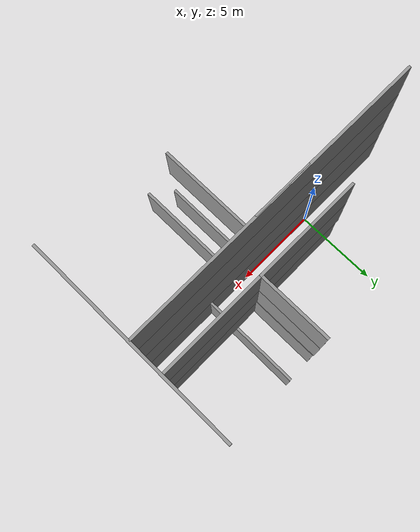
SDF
<sdf version="1.7">
 <world name="__default__">
  <model name="level4_floor">
   <link name="Wall_12">
    <pose>3.88883 -0.004681 0 0 -0 0</pose>
    <visual name="Wall_12_Visual">
     <pose>0 0 1.25 0 -0 0</pose>
     <geometry><box><size>18 0.15 2.5</size></box></geometry>
     <material>
      <script><uri>file://media/materials/scripts/gazebo.material</uri><name>Gazebo/Grey</name></script>
      <ambient>1 1 1 1</ambient>
      <shader type="pixel"/>
     </material>
     <meta><layer>0</layer></meta>
    </visual>
    <collision name="Wall_12_Collision">
     <pose>0 0 1.25 0 -0 0</pose>
     <geometry><box><size>18 0.15 2.5</size></box></geometry>
     <surface>
      <friction>
       <ode><mu>1</mu><mu2>1</mu2><fdir1>0 0 0</fdir1><slip1>0</slip1><slip2>0</slip2></ode>
       <torsional>
        <coefficient>1</coefficient>
        <patch_radius>0</patch_radius>
        <surface_radius>0</surface_radius>
        <use_patch_radius>1</use_patch_radius>
        <ode><slip>0</slip></ode>
       </torsional>
      </friction>
      <bounce><restitution_coefficient>0</restitution_coefficient><threshold>1e+06</threshold></bounce>
      <contact>
       <collide_without_contact>0</collide_without_contact>
       <collide_without_contact_bitmask>1</collide_without_contact_bitmask>
       <collide_bitmask>1</collide_bitmask>
       <ode>
        <soft_cfm>0</soft_cfm>
        <soft_erp>0.2</soft_erp>
        <kp>1e+13</kp>
        <kd>1</kd>
        <max_vel>0.01</max_vel>
        <min_depth>0</min_depth>
       </ode>
       <bullet>
        <split_impulse>1</split_impulse>
        <split_impulse_penetration_threshold>-0.01</split_impulse_penetration_threshold>
        <soft_cfm>0</soft_cfm>
        <soft_erp>0.2</soft_erp>
        <kp>1e+13</kp>
        <kd>1</kd>
       </bullet>
      </contact>
     </surface>
    </collision>
   </link>
   <link name="Wall_20">
    <pose>5.23395 -2.97304 0 0 0 -1.5708</pose>
    <visual name="Wall_20_Visual">
     <pose>0 0 1.25 0 -0 0</pose>
     <geometry><box><size>6 0.15 2.5</size></box></geometry>
     <material>
      <script><uri>file://media/materials/scripts/gazebo.material</uri><name>Gazebo/Grey</name></script>
      <ambient>1 1 1 1</ambient>
      <shader type="pixel"/>
     </material>
     <meta><layer>0</layer></meta>
    </visual>
    <collision name="Wall_20_Collision">
     <pose>0 0 1.25 0 -0 0</pose>
     <geometry><box><size>6 0.15 2.5</size></box></geometry>
     <surface>
      <friction>
       <ode><mu>1</mu><mu2>1</mu2><fdir1>0 0 0</fdir1><slip1>0</slip1><slip2>0</slip2></ode>
       <torsional>
        <coefficient>1</coefficient>
        <patch_radius>0</patch_radius>
        <surface_radius>0</surface_radius>
        <use_patch_radius>1</use_patch_radius>
        <ode><slip>0</slip></ode>
       </torsional>
      </friction>
      <bounce><restitution_coefficient>0</restitution_coefficient><threshold>1e+06</threshold></bounce>
      <contact>
       <collide_without_contact>0</collide_without_contact>
       <collide_without_contact_bitmask>1</collide_without_contact_bitmask>
       <collide_bitmask>1</collide_bitmask>
       <ode>
        <soft_cfm>0</soft_cfm>
        <soft_erp>0.2</soft_erp>
        <kp>1e+13</kp>
        <kd>1</kd>
        <max_vel>0.01</max_vel>
        <min_depth>0</min_depth>
       </ode>
       <bullet>
        <split_impulse>1</split_impulse>
        <split_impulse_penetration_threshold>-0.01</split_impulse_penetration_threshold>
        <soft_cfm>0</soft_cfm>
        <soft_erp>0.2</soft_erp>
        <kp>1e+13</kp>
        <kd>1</kd>
       </bullet>
      </contact>
     </surface>
    </collision>
   </link>
   <link name="Wall_24">
    <pose>8.37715 2.92436 0 0 -0 1.5708</pose>
    <visual name="Wall_24_Visual">
     <pose>0 0 1.25 0 -0 0</pose>
     <geometry><box><size>6 0.15 2.5</size></box></geometry>
     <material>
      <script><uri>file://media/materials/scripts/gazebo.material</uri><name>Gazebo/Grey</name></script>
      <ambient>1 1 1 1</ambient>
      <shader type="pixel"/>
     </material>
     <meta><layer>0</layer></meta>
    </visual>
    <collision name="Wall_24_Collision">
     <pose>0 0 1.25 0 -0 0</pose>
     <geometry><box><size>6 0.15 2.5</size></box></geometry>
     <surface>
      <friction>
       <ode><mu>1</mu><mu2>1</mu2><fdir1>0 0 0</fdir1><slip1>0</slip1><slip2>0</slip2></ode>
       <torsional>
        <coefficient>1</coefficient>
        <patch_radius>0</patch_radius>
        <surface_radius>0</surface_radius>
        <use_patch_radius>1</use_patch_radius>
        <ode><slip>0</slip></ode>
       </torsional>
      </friction>
      <bounce><restitution_coefficient>0</restitution_coefficient><threshold>1e+06</threshold></bounce>
      <contact>
       <collide_without_contact>0</collide_without_contact>
       <collide_without_contact_bitmask>1</collide_without_contact_bitmask>
       <collide_bitmask>1</collide_bitmask>
       <ode>
        <soft_cfm>0</soft_cfm>
        <soft_erp>0.2</soft_erp>
        <kp>1e+13</kp>
        <kd>1</kd>
        <max_vel>0.01</max_vel>
        <min_depth>0</min_depth>
       </ode>
       <bullet>
        <split_impulse>1</split_impulse>
        <split_impulse_penetration_threshold>-0.01</split_impulse_penetration_threshold>
        <soft_cfm>0</soft_cfm>
        <soft_erp>0.2</soft_erp>
        <kp>1e+13</kp>
        <kd>1</kd>
       </bullet>
      </contact>
     </surface>
    </collision>
   </link>
   <link name="Wall_32">
    <pose>12.925 0 2.5 0 0 -1.5708</pose>
    <visual name="Wall_32_Visual">
     <pose>0 0 1.25 0 -0 0</pose>
     <geometry><box><size>12 0.15 2.5</size></box></geometry>
     <material>
      <script><uri>file://media/materials/scripts/gazebo.material</uri><name>Gazebo/Grey</name></script>
      <ambient>1 1 1 1</ambient>
      <shader type="pixel"/>
     </material>
     <meta><layer>1</layer></meta>
    </visual>
    <collision name="Wall_32_Collision">
     <pose>0 0 1.25 0 -0 0</pose>
     <geometry><box><size>12 0.15 2.5</size></box></geometry>
     <surface>
      <friction>
       <ode><mu>1</mu><mu2>1</mu2><fdir1>0 0 0</fdir1><slip1>0</slip1><slip2>0</slip2></ode>
       <torsional>
        <coefficient>1</coefficient>
        <patch_radius>0</patch_radius>
        <surface_radius>0</surface_radius>
        <use_patch_radius>1</use_patch_radius>
        <ode><slip>0</slip></ode>
       </torsional>
      </friction>
      <bounce><restitution_coefficient>0</restitution_coefficient><threshold>1e+06</threshold></bounce>
      <contact>
       <collide_without_contact>0</collide_without_contact>
       <collide_without_contact_bitmask>1</collide_without_contact_bitmask>
       <collide_bitmask>1</collide_bitmask>
       <ode>
        <soft_cfm>0</soft_cfm>
        <soft_erp>0.2</soft_erp>
        <kp>1e+13</kp>
        <kd>1</kd>
        <max_vel>0.01</max_vel>
        <min_depth>0</min_depth>
       </ode>
       <bullet>
        <split_impulse>1</split_impulse>
        <split_impulse_penetration_threshold>-0.01</split_impulse_penetration_threshold>
        <soft_cfm>0</soft_cfm>
        <soft_erp>0.2</soft_erp>
        <kp>1e+13</kp>
        <kd>1</kd>
       </bullet>
      </contact>
     </surface>
    </collision>
   </link>
   <link name="Wall_33">
    <pose>3.88883 -0.004681 2.5 0 -0 0</pose>
    <visual name="Wall_33_Visual">
     <pose>0 0 1.25 0 -0 0</pose>
     <geometry><box><size>18 0.15 2.5</size></box></geometry>
     <material>
      <script><uri>file://media/materials/scripts/gazebo.material</uri><name>Gazebo/Grey</name></script>
      <ambient>1 1 1 1</ambient>
      <shader type="pixel"/>
     </material>
     <meta><layer>1</layer></meta>
    </visual>
    <collision name="Wall_33_Collision">
     <pose>0 0 1.25 0 -0 0</pose>
     <geometry><box><size>18 0.15 2.5</size></box></geometry>
     <surface>
      <friction>
       <ode><mu>1</mu><mu2>1</mu2><fdir1>0 0 0</fdir1><slip1>0</slip1><slip2>0</slip2></ode>
       <torsional>
        <coefficient>1</coefficient>
        <patch_radius>0</patch_radius>
        <surface_radius>0</surface_radius>
        <use_patch_radius>1</use_patch_radius>
        <ode><slip>0</slip></ode>
       </torsional>
      </friction>
      <bounce><restitution_coefficient>0</restitution_coefficient><threshold>1e+06</threshold></bounce>
      <contact>
       <collide_without_contact>0</collide_without_contact>
       <collide_without_contact_bitmask>1</collide_without_contact_bitmask>
       <collide_bitmask>1</collide_bitmask>
       <ode>
        <soft_cfm>0</soft_cfm>
        <soft_erp>0.2</soft_erp>
        <kp>1e+13</kp>
        <kd>1</kd>
        <max_vel>0.01</max_vel>
        <min_depth>0</min_depth>
       </ode>
       <bullet>
        <split_impulse>1</split_impulse>
        <split_impulse_penetration_threshold>-0.01</split_impulse_penetration_threshold>
        <soft_cfm>0</soft_cfm>
        <soft_erp>0.2</soft_erp>
        <kp>1e+13</kp>
        <kd>1</kd>
       </bullet>
      </contact>
     </surface>
    </collision>
   </link>
   <link name="Wall_37">
    <pose>6.86229 -2.97304 2.5 0 0 -1.5708</pose>
    <visual name="Wall_37_Visual">
     <pose>0 0 1.25 0 -0 0</pose>
     <geometry><box><size>6 0.15 2.5</size></box></geometry>
     <material>
      <script><uri>file://media/materials/scripts/gazebo.material</uri><name>Gazebo/Grey</name></script>
      <ambient>1 1 1 1</ambient>
      <shader type="pixel"/>
     </material>
     <meta><layer>1</layer></meta>
    </visual>
    <collision name="Wall_37_Collision">
     <pose>0 0 1.25 0 -0 0</pose>
     <geometry><box><size>6 0.15 2.5</size></box></geometry>
     <surface>
      <friction>
       <ode><mu>1</mu><mu2>1</mu2><fdir1>0 0 0</fdir1><slip1>0</slip1><slip2>0</slip2></ode>
       <torsional>
        <coefficient>1</coefficient>
        <patch_radius>0</patch_radius>
        <surface_radius>0</surface_radius>
        <use_patch_radius>1</use_patch_radius>
        <ode><slip>0</slip></ode>
       </torsional>
      </friction>
      <bounce><restitution_coefficient>0</restitution_coefficient><threshold>1e+06</threshold></bounce>
      <contact>
       <collide_without_contact>0</collide_without_contact>
       <collide_without_contact_bitmask>1</collide_without_contact_bitmask>
       <collide_bitmask>1</collide_bitmask>
       <ode>
        <soft_cfm>0</soft_cfm>
        <soft_erp>0.2</soft_erp>
        <kp>1e+13</kp>
        <kd>1</kd>
        <max_vel>0.01</max_vel>
        <min_depth>0</min_depth>
       </ode>
       <bullet>
        <split_impulse>1</split_impulse>
        <split_impulse_penetration_threshold>-0.01</split_impulse_penetration_threshold>
        <soft_cfm>0</soft_cfm>
        <soft_erp>0.2</soft_erp>
        <kp>1e+13</kp>
        <kd>1</kd>
       </bullet>
      </contact>
     </surface>
    </collision>
   </link>
   <link name="Wall_38">
    <pose>4.23965 -0.007809 2.5 0 -0 0</pose>
    <visual name="Wall_38_Visual">
     <pose>0 0 1.25 0 -0 0</pose>
     <geometry><box><size>5 0.15 2.5</size></box></geometry>
     <material>
      <script><uri>file://media/materials/scripts/gazebo.material</uri><name>Gazebo/Grey</name></script>
      <ambient>1 1 1 1</ambient>
      <shader type="pixel"/>
     </material>
     <meta><layer>1</layer></meta>
    </visual>
    <collision name="Wall_38_Collision">
     <pose>0 0 1.25 0 -0 0</pose>
     <geometry><box><size>5 0.15 2.5</size></box></geometry>
     <surface>
      <friction>
       <ode><mu>1</mu><mu2>1</mu2><fdir1>0 0 0</fdir1><slip1>0</slip1><slip2>0</slip2></ode>
       <torsional>
        <coefficient>1</coefficient>
        <patch_radius>0</patch_radius>
        <surface_radius>0</surface_radius>
        <use_patch_radius>1</use_patch_radius>
        <ode><slip>0</slip></ode>
       </torsional>
      </friction>
      <bounce><restitution_coefficient>0</restitution_coefficient><threshold>1e+06</threshold></bounce>
      <contact>
       <collide_without_contact>0</collide_without_contact>
       <collide_without_contact_bitmask>1</collide_without_contact_bitmask>
       <collide_bitmask>1</collide_bitmask>
       <ode>
        <soft_cfm>0</soft_cfm>
        <soft_erp>0.2</soft_erp>
        <kp>1e+13</kp>
        <kd>1</kd>
        <max_vel>0.01</max_vel>
        <min_depth>0</min_depth>
       </ode>
       <bullet>
        <split_impulse>1</split_impulse>
        <split_impulse_penetration_threshold>-0.01</split_impulse_penetration_threshold>
        <soft_cfm>0</soft_cfm>
        <soft_erp>0.2</soft_erp>
        <kp>1e+13</kp>
        <kd>1</kd>
       </bullet>
      </contact>
     </surface>
    </collision>
   </link>
   <link name="Wall_39">
    <pose>7.01245 3.8781 2.5 0 -0 1.5708</pose>
    <visual name="Wall_39_Visual">
     <pose>0 0 1.25 0 -0 0</pose>
     <geometry><box><size>4 0.15 2.5</size></box></geometry>
     <material>
      <script><uri>file://media/materials/scripts/gazebo.material</uri><name>Gazebo/Grey</name></script>
      <ambient>1 1 1 1</ambient>
      <shader type="pixel"/>
     </material>
     <meta><layer>1</layer></meta>
    </visual>
    <collision name="Wall_39_Collision">
     <pose>0 0 1.25 0 -0 0</pose>
     <geometry><box><size>4 0.15 2.5</size></box></geometry>
     <surface>
      <friction>
       <ode><mu>1</mu><mu2>1</mu2><fdir1>0 0 0</fdir1><slip1>0</slip1><slip2>0</slip2></ode>
       <torsional>
        <coefficient>1</coefficient>
        <patch_radius>0</patch_radius>
        <surface_radius>0</surface_radius>
        <use_patch_radius>1</use_patch_radius>
        <ode><slip>0</slip></ode>
       </torsional>
      </friction>
      <bounce><restitution_coefficient>0</restitution_coefficient><threshold>1e+06</threshold></bounce>
      <contact>
       <collide_without_contact>0</collide_without_contact>
       <collide_without_contact_bitmask>1</collide_without_contact_bitmask>
       <collide_bitmask>1</collide_bitmask>
       <ode>
        <soft_cfm>0</soft_cfm>
        <soft_erp>0.2</soft_erp>
        <kp>1e+13</kp>
        <kd>1</kd>
        <max_vel>0.01</max_vel>
        <min_depth>0</min_depth>
       </ode>
       <bullet>
        <split_impulse>1</split_impulse>
        <split_impulse_penetration_threshold>-0.01</split_impulse_penetration_threshold>
        <soft_cfm>0</soft_cfm>
        <soft_erp>0.2</soft_erp>
        <kp>1e+13</kp>
        <kd>1</kd>
       </bullet>
      </contact>
     </surface>
    </collision>
   </link>
   <link name="Wall_45">
    <pose>12.925 0 5 0 0 -1.5708</pose>
    <visual name="Wall_45_Visual">
     <pose>0 0 1.25 0 -0 0</pose>
     <geometry><box><size>12 0.15 2.5</size></box></geometry>
     <material>
      <script><uri>file://media/materials/scripts/gazebo.material</uri><name>Gazebo/Grey</name></script>
      <ambient>1 1 1 1</ambient>
      <shader type="pixel"/>
     </material>
     <meta><layer>2</layer></meta>
    </visual>
    <collision name="Wall_45_Collision">
     <pose>0 0 1.25 0 -0 0</pose>
     <geometry><box><size>12 0.15 2.5</size></box></geometry>
     <surface>
      <friction>
       <ode><mu>1</mu><mu2>1</mu2><fdir1>0 0 0</fdir1><slip1>0</slip1><slip2>0</slip2></ode>
       <torsional>
        <coefficient>1</coefficient>
        <patch_radius>0</patch_radius>
        <surface_radius>0</surface_radius>
        <use_patch_radius>1</use_patch_radius>
        <ode><slip>0</slip></ode>
       </torsional>
      </friction>
      <bounce><restitution_coefficient>0</restitution_coefficient><threshold>1e+06</threshold></bounce>
      <contact>
       <collide_without_contact>0</collide_without_contact>
       <collide_without_contact_bitmask>1</collide_without_contact_bitmask>
       <collide_bitmask>1</collide_bitmask>
       <ode>
        <soft_cfm>0</soft_cfm>
        <soft_erp>0.2</soft_erp>
        <kp>1e+13</kp>
        <kd>1</kd>
        <max_vel>0.01</max_vel>
        <min_depth>0</min_depth>
       </ode>
       <bullet>
        <split_impulse>1</split_impulse>
        <split_impulse_penetration_threshold>-0.01</split_impulse_penetration_threshold>
        <soft_cfm>0</soft_cfm>
        <soft_erp>0.2</soft_erp>
        <kp>1e+13</kp>
        <kd>1</kd>
       </bullet>
      </contact>
     </surface>
    </collision>
   </link>
   <link name="Wall_46">
    <pose>3.88883 -0.004681 5 0 -0 0</pose>
    <visual name="Wall_46_Visual">
     <pose>0 0 1.25 0 -0 0</pose>
     <geometry><box><size>18 0.15 2.5</size></box></geometry>
     <material>
      <script><uri>file://media/materials/scripts/gazebo.material</uri><name>Gazebo/Grey</name></script>
      <ambient>1 1 1 1</ambient>
      <shader type="pixel"/>
     </material>
     <meta><layer>2</layer></meta>
    </visual>
    <collision name="Wall_46_Collision">
     <pose>0 0 1.25 0 -0 0</pose>
     <geometry><box><size>18 0.15 2.5</size></box></geometry>
     <surface>
      <friction>
       <ode><mu>1</mu><mu2>1</mu2><fdir1>0 0 0</fdir1><slip1>0</slip1><slip2>0</slip2></ode>
       <torsional>
        <coefficient>1</coefficient>
        <patch_radius>0</patch_radius>
        <surface_radius>0</surface_radius>
        <use_patch_radius>1</use_patch_radius>
        <ode><slip>0</slip></ode>
       </torsional>
      </friction>
      <bounce><restitution_coefficient>0</restitution_coefficient><threshold>1e+06</threshold></bounce>
      <contact>
       <collide_without_contact>0</collide_without_contact>
       <collide_without_contact_bitmask>1</collide_without_contact_bitmask>
       <collide_bitmask>1</collide_bitmask>
       <ode>
        <soft_cfm>0</soft_cfm>
        <soft_erp>0.2</soft_erp>
        <kp>1e+13</kp>
        <kd>1</kd>
        <max_vel>0.01</max_vel>
        <min_depth>0</min_depth>
       </ode>
       <bullet>
        <split_impulse>1</split_impulse>
        <split_impulse_penetration_threshold>-0.01</split_impulse_penetration_threshold>
        <soft_cfm>0</soft_cfm>
        <soft_erp>0.2</soft_erp>
        <kp>1e+13</kp>
        <kd>1</kd>
       </bullet>
      </contact>
     </surface>
    </collision>
   </link>
   <link name="Wall_50">
    <pose>5.23395 -2.97304 5 0 0 -1.5708</pose>
    <visual name="Wall_50_Visual">
     <pose>0 0 1.25 0 -0 0</pose>
     <geometry><box><size>6 0.15 2.5</size></box></geometry>
     <material>
      <script><uri>file://media/materials/scripts/gazebo.material</uri><name>Gazebo/Grey</name></script>
      <ambient>1 1 1 1</ambient>
      <shader type="pixel"/>
     </material>
     <meta><layer>2</layer></meta>
    </visual>
    <collision name="Wall_50_Collision">
     <pose>0 0 1.25 0 -0 0</pose>
     <geometry><box><size>6 0.15 2.5</size></box></geometry>
     <surface>
      <friction>
       <ode><mu>1</mu><mu2>1</mu2><fdir1>0 0 0</fdir1><slip1>0</slip1><slip2>0</slip2></ode>
       <torsional>
        <coefficient>1</coefficient>
        <patch_radius>0</patch_radius>
        <surface_radius>0</surface_radius>
        <use_patch_radius>1</use_patch_radius>
        <ode><slip>0</slip></ode>
       </torsional>
      </friction>
      <bounce><restitution_coefficient>0</restitution_coefficient><threshold>1e+06</threshold></bounce>
      <contact>
       <collide_without_contact>0</collide_without_contact>
       <collide_without_contact_bitmask>1</collide_without_contact_bitmask>
       <collide_bitmask>1</collide_bitmask>
       <ode>
        <soft_cfm>0</soft_cfm>
        <soft_erp>0.2</soft_erp>
        <kp>1e+13</kp>
        <kd>1</kd>
        <max_vel>0.01</max_vel>
        <min_depth>0</min_depth>
       </ode>
       <bullet>
        <split_impulse>1</split_impulse>
        <split_impulse_penetration_threshold>-0.01</split_impulse_penetration_threshold>
        <soft_cfm>0</soft_cfm>
        <soft_erp>0.2</soft_erp>
        <kp>1e+13</kp>
        <kd>1</kd>
       </bullet>
      </contact>
     </surface>
    </collision>
   </link>
   <link name="Wall_51">
    <pose>3.48965 -0.007809 5 0 -0 0</pose>
    <visual name="Wall_51_Visual">
     <pose>0 0 1.25 0 -0 0</pose>
     <geometry><box><size>3.5 0.15 2.5</size></box></geometry>
     <material>
      <script><uri>file://media/materials/scripts/gazebo.material</uri><name>Gazebo/Grey</name></script>
      <ambient>1 1 1 1</ambient>
      <shader type="pixel"/>
     </material>
     <meta><layer>2</layer></meta>
    </visual>
    <collision name="Wall_51_Collision">
     <pose>0 0 1.25 0 -0 0</pose>
     <geometry><box><size>3.5 0.15 2.5</size></box></geometry>
     <surface>
      <friction>
       <ode><mu>1</mu><mu2>1</mu2><fdir1>0 0 0</fdir1><slip1>0</slip1><slip2>0</slip2></ode>
       <torsional>
        <coefficient>1</coefficient>
        <patch_radius>0</patch_radius>
        <surface_radius>0</surface_radius>
        <use_patch_radius>1</use_patch_radius>
        <ode><slip>0</slip></ode>
       </torsional>
      </friction>
      <bounce><restitution_coefficient>0</restitution_coefficient><threshold>1e+06</threshold></bounce>
      <contact>
       <collide_without_contact>0</collide_without_contact>
       <collide_without_contact_bitmask>1</collide_without_contact_bitmask>
       <collide_bitmask>1</collide_bitmask>
       <ode>
        <soft_cfm>0</soft_cfm>
        <soft_erp>0.2</soft_erp>
        <kp>1e+13</kp>
        <kd>1</kd>
        <max_vel>0.01</max_vel>
        <min_depth>0</min_depth>
       </ode>
       <bullet>
        <split_impulse>1</split_impulse>
        <split_impulse_penetration_threshold>-0.01</split_impulse_penetration_threshold>
        <soft_cfm>0</soft_cfm>
        <soft_erp>0.2</soft_erp>
        <kp>1e+13</kp>
        <kd>1</kd>
       </bullet>
      </contact>
     </surface>
    </collision>
   </link>
   <link name="Wall_52">
    <pose>6.99281 3.92436 5 0 -0 1.5708</pose>
    <visual name="Wall_52_Visual">
     <pose>0 0 1.25 0 -0 0</pose>
     <geometry><box><size>4 0.15 2.5</size></box></geometry>
     <material>
      <script><uri>file://media/materials/scripts/gazebo.material</uri><name>Gazebo/Grey</name></script>
      <ambient>1 1 1 1</ambient>
      <shader type="pixel"/>
     </material>
     <meta><layer>2</layer></meta>
    </visual>
    <collision name="Wall_52_Collision">
     <pose>0 0 1.25 0 -0 0</pose>
     <geometry><box><size>4 0.15 2.5</size></box></geometry>
     <surface>
      <friction>
       <ode><mu>1</mu><mu2>1</mu2><fdir1>0 0 0</fdir1><slip1>0</slip1><slip2>0</slip2></ode>
       <torsional>
        <coefficient>1</coefficient>
        <patch_radius>0</patch_radius>
        <surface_radius>0</surface_radius>
        <use_patch_radius>1</use_patch_radius>
        <ode><slip>0</slip></ode>
       </torsional>
      </friction>
      <bounce><restitution_coefficient>0</restitution_coefficient><threshold>1e+06</threshold></bounce>
      <contact>
       <collide_without_contact>0</collide_without_contact>
       <collide_without_contact_bitmask>1</collide_without_contact_bitmask>
       <collide_bitmask>1</collide_bitmask>
       <ode>
        <soft_cfm>0</soft_cfm>
        <soft_erp>0.2</soft_erp>
        <kp>1e+13</kp>
        <kd>1</kd>
        <max_vel>0.01</max_vel>
        <min_depth>0</min_depth>
       </ode>
       <bullet>
        <split_impulse>1</split_impulse>
        <split_impulse_penetration_threshold>-0.01</split_impulse_penetration_threshold>
        <soft_cfm>0</soft_cfm>
        <soft_erp>0.2</soft_erp>
        <kp>1e+13</kp>
        <kd>1</kd>
       </bullet>
      </contact>
     </surface>
    </collision>
   </link>
   <link name="Wall_55">
    <pose>9.91781 1.99936 5 0 -0 0</pose>
    <visual name="Wall_55_Visual">
     <pose>0 0 1.25 0 -0 0</pose>
     <geometry><box><size>6 0.15 2.5</size></box></geometry>
     <material>
      <script><uri>file://media/materials/scripts/gazebo.material</uri><name>Gazebo/Grey</name></script>
      <ambient>1 1 1 1</ambient>
      <shader type="pixel"/>
     </material>
     <meta><layer>2</layer></meta>
    </visual>
    <collision name="Wall_55_Collision">
     <pose>0 0 1.25 0 -0 0</pose>
     <geometry><box><size>6 0.15 2.5</size></box></geometry>
     <surface>
      <friction>
       <ode><mu>1</mu><mu2>1</mu2><fdir1>0 0 0</fdir1><slip1>0</slip1><slip2>0</slip2></ode>
       <torsional>
        <coefficient>1</coefficient>
        <patch_radius>0</patch_radius>
        <surface_radius>0</surface_radius>
        <use_patch_radius>1</use_patch_radius>
        <ode><slip>0</slip></ode>
       </torsional>
      </friction>
      <bounce><restitution_coefficient>0</restitution_coefficient><threshold>1e+06</threshold></bounce>
      <contact>
       <collide_without_contact>0</collide_without_contact>
       <collide_without_contact_bitmask>1</collide_without_contact_bitmask>
       <collide_bitmask>1</collide_bitmask>
       <ode>
        <soft_cfm>0</soft_cfm>
        <soft_erp>0.2</soft_erp>
        <kp>1e+13</kp>
        <kd>1</kd>
        <max_vel>0.01</max_vel>
        <min_depth>0</min_depth>
       </ode>
       <bullet>
        <split_impulse>1</split_impulse>
        <split_impulse_penetration_threshold>-0.01</split_impulse_penetration_threshold>
        <soft_cfm>0</soft_cfm>
        <soft_erp>0.2</soft_erp>
        <kp>1e+13</kp>
        <kd>1</kd>
       </bullet>
      </contact>
     </surface>
    </collision>
   </link>
   <link name="Wall_57">
    <pose>4.06781 1.99936 5 0 -0 3.14159</pose>
    <visual name="Wall_57_Visual">
     <pose>0 0 1.25 0 -0 0</pose>
     <geometry><box><size>6 0.15 2.5</size></box></geometry>
     <material>
      <script><uri>file://media/materials/scripts/gazebo.material</uri><name>Gazebo/Grey</name></script>
      <ambient>1 1 1 1</ambient>
      <shader type="pixel"/>
     </material>
     <meta><layer>2</layer></meta>
    </visual>
    <collision name="Wall_57_Collision">
     <pose>0 0 1.25 0 -0 0</pose>
     <geometry><box><size>6 0.15 2.5</size></box></geometry>
     <surface>
      <friction>
       <ode><mu>1</mu><mu2>1</mu2><fdir1>0 0 0</fdir1><slip1>0</slip1><slip2>0</slip2></ode>
       <torsional>
        <coefficient>1</coefficient>
        <patch_radius>0</patch_radius>
        <surface_radius>0</surface_radius>
        <use_patch_radius>1</use_patch_radius>
        <ode><slip>0</slip></ode>
       </torsional>
      </friction>
      <bounce><restitution_coefficient>0</restitution_coefficient><threshold>1e+06</threshold></bounce>
      <contact>
       <collide_without_contact>0</collide_without_contact>
       <collide_without_contact_bitmask>1</collide_without_contact_bitmask>
       <collide_bitmask>1</collide_bitmask>
       <ode>
        <soft_cfm>0</soft_cfm>
        <soft_erp>0.2</soft_erp>
        <kp>1e+13</kp>
        <kd>1</kd>
        <max_vel>0.01</max_vel>
        <min_depth>0</min_depth>
       </ode>
       <bullet>
        <split_impulse>1</split_impulse>
        <split_impulse_penetration_threshold>-0.01</split_impulse_penetration_threshold>
        <soft_cfm>0</soft_cfm>
        <soft_erp>0.2</soft_erp>
        <kp>1e+13</kp>
        <kd>1</kd>
       </bullet>
      </contact>
     </surface>
    </collision>
   </link>
   <link name="Wall_68">
    <pose>12.925 0 7.5 0 0 -1.5708</pose>
    <visual name="Wall_68_Visual">
     <pose>0 0 1.25 0 -0 0</pose>
     <geometry><box><size>12 0.15 2.5</size></box></geometry>
     <material>
      <script><uri>file://media/materials/scripts/gazebo.material</uri><name>Gazebo/Grey</name></script>
      <ambient>1 1 1 1</ambient>
      <shader type="pixel"/>
     </material>
     <meta><layer>3</layer></meta>
    </visual>
    <collision name="Wall_68_Collision">
     <pose>0 0 1.25 0 -0 0</pose>
     <geometry><box><size>12 0.15 2.5</size></box></geometry>
     <surface>
      <friction>
       <ode><mu>1</mu><mu2>1</mu2><fdir1>0 0 0</fdir1><slip1>0</slip1><slip2>0</slip2></ode>
       <torsional>
        <coefficient>1</coefficient>
        <patch_radius>0</patch_radius>
        <surface_radius>0</surface_radius>
        <use_patch_radius>1</use_patch_radius>
        <ode><slip>0</slip></ode>
       </torsional>
      </friction>
      <bounce><restitution_coefficient>0</restitution_coefficient><threshold>1e+06</threshold></bounce>
      <contact>
       <collide_without_contact>0</collide_without_contact>
       <collide_without_contact_bitmask>1</collide_without_contact_bitmask>
       <collide_bitmask>1</collide_bitmask>
       <ode>
        <soft_cfm>0</soft_cfm>
        <soft_erp>0.2</soft_erp>
        <kp>1e+13</kp>
        <kd>1</kd>
        <max_vel>0.01</max_vel>
        <min_depth>0</min_depth>
       </ode>
       <bullet>
        <split_impulse>1</split_impulse>
        <split_impulse_penetration_threshold>-0.01</split_impulse_penetration_threshold>
        <soft_cfm>0</soft_cfm>
        <soft_erp>0.2</soft_erp>
        <kp>1e+13</kp>
        <kd>1</kd>
       </bullet>
      </contact>
     </surface>
    </collision>
   </link>
   <link name="Wall_69">
    <pose>3.88883 -0.004681 7.5 0 -0 0</pose>
    <visual name="Wall_69_Visual">
     <pose>0 0 1.25 0 -0 0</pose>
     <geometry><box><size>18 0.15 2.5</size></box></geometry>
     <material>
      <script><uri>file://media/materials/scripts/gazebo.material</uri><name>Gazebo/Grey</name></script>
      <ambient>1 1 1 1</ambient>
      <shader type="pixel"/>
     </material>
     <meta><layer>3</layer></meta>
    </visual>
    <collision name="Wall_69_Collision">
     <pose>0 0 1.25 0 -0 0</pose>
     <geometry><box><size>18 0.15 2.5</size></box></geometry>
     <surface>
      <friction>
       <ode><mu>1</mu><mu2>1</mu2><fdir1>0 0 0</fdir1><slip1>0</slip1><slip2>0</slip2></ode>
       <torsional>
        <coefficient>1</coefficient>
        <patch_radius>0</patch_radius>
        <surface_radius>0</surface_radius>
        <use_patch_radius>1</use_patch_radius>
        <ode><slip>0</slip></ode>
       </torsional>
      </friction>
      <bounce><restitution_coefficient>0</restitution_coefficient><threshold>1e+06</threshold></bounce>
      <contact>
       <collide_without_contact>0</collide_without_contact>
       <collide_without_contact_bitmask>1</collide_without_contact_bitmask>
       <collide_bitmask>1</collide_bitmask>
       <ode>
        <soft_cfm>0</soft_cfm>
        <soft_erp>0.2</soft_erp>
        <kp>1e+13</kp>
        <kd>1</kd>
        <max_vel>0.01</max_vel>
        <min_depth>0</min_depth>
       </ode>
       <bullet>
        <split_impulse>1</split_impulse>
        <split_impulse_penetration_threshold>-0.01</split_impulse_penetration_threshold>
        <soft_cfm>0</soft_cfm>
        <soft_erp>0.2</soft_erp>
        <kp>1e+13</kp>
        <kd>1</kd>
       </bullet>
      </contact>
     </surface>
    </collision>
   </link>
   <link name="Wall_74">
    <pose>3.48965 -0.007809 7.5 0 -0 0</pose>
    <visual name="Wall_74_Visual">
     <pose>0 0 1.25 0 -0 0</pose>
     <geometry><box><size>3.5 0.15 2.5</size></box></geometry>
     <material>
      <script><uri>file://media/materials/scripts/gazebo.material</uri><name>Gazebo/Grey</name></script>
      <ambient>1 1 1 1</ambient>
      <shader type="pixel"/>
     </material>
     <meta><layer>3</layer></meta>
    </visual>
    <collision name="Wall_74_Collision">
     <pose>0 0 1.25 0 -0 0</pose>
     <geometry><box><size>3.5 0.15 2.5</size></box></geometry>
     <surface>
      <friction>
       <ode><mu>1</mu><mu2>1</mu2><fdir1>0 0 0</fdir1><slip1>0</slip1><slip2>0</slip2></ode>
       <torsional>
        <coefficient>1</coefficient>
        <patch_radius>0</patch_radius>
        <surface_radius>0</surface_radius>
        <use_patch_radius>1</use_patch_radius>
        <ode><slip>0</slip></ode>
       </torsional>
      </friction>
      <bounce><restitution_coefficient>0</restitution_coefficient><threshold>1e+06</threshold></bounce>
      <contact>
       <collide_without_contact>0</collide_without_contact>
       <collide_without_contact_bitmask>1</collide_without_contact_bitmask>
       <collide_bitmask>1</collide_bitmask>
       <ode>
        <soft_cfm>0</soft_cfm>
        <soft_erp>0.2</soft_erp>
        <kp>1e+13</kp>
        <kd>1</kd>
        <max_vel>0.01</max_vel>
        <min_depth>0</min_depth>
       </ode>
       <bullet>
        <split_impulse>1</split_impulse>
        <split_impulse_penetration_threshold>-0.01</split_impulse_penetration_threshold>
        <soft_cfm>0</soft_cfm>
        <soft_erp>0.2</soft_erp>
        <kp>1e+13</kp>
        <kd>1</kd>
       </bullet>
      </contact>
     </surface>
    </collision>
   </link>
   <link name="Wall_75">
    <pose>6.99281 3.92436 7.5 0 -0 1.5708</pose>
    <visual name="Wall_75_Visual">
     <pose>0 0 1.25 0 -0 0</pose>
     <geometry><box><size>4 0.15 2.5</size></box></geometry>
     <material>
      <script><uri>file://media/materials/scripts/gazebo.material</uri><name>Gazebo/Grey</name></script>
      <ambient>1 1 1 1</ambient>
      <shader type="pixel"/>
     </material>
     <meta><layer>3</layer></meta>
    </visual>
    <collision name="Wall_75_Collision">
     <pose>0 0 1.25 0 -0 0</pose>
     <geometry><box><size>4 0.15 2.5</size></box></geometry>
     <surface>
      <friction>
       <ode><mu>1</mu><mu2>1</mu2><fdir1>0 0 0</fdir1><slip1>0</slip1><slip2>0</slip2></ode>
       <torsional>
        <coefficient>1</coefficient>
        <patch_radius>0</patch_radius>
        <surface_radius>0</surface_radius>
        <use_patch_radius>1</use_patch_radius>
        <ode><slip>0</slip></ode>
       </torsional>
      </friction>
      <bounce><restitution_coefficient>0</restitution_coefficient><threshold>1e+06</threshold></bounce>
      <contact>
       <collide_without_contact>0</collide_without_contact>
       <collide_without_contact_bitmask>1</collide_without_contact_bitmask>
       <collide_bitmask>1</collide_bitmask>
       <ode>
        <soft_cfm>0</soft_cfm>
        <soft_erp>0.2</soft_erp>
        <kp>1e+13</kp>
        <kd>1</kd>
        <max_vel>0.01</max_vel>
        <min_depth>0</min_depth>
       </ode>
       <bullet>
        <split_impulse>1</split_impulse>
        <split_impulse_penetration_threshold>-0.01</split_impulse_penetration_threshold>
        <soft_cfm>0</soft_cfm>
        <soft_erp>0.2</soft_erp>
        <kp>1e+13</kp>
        <kd>1</kd>
       </bullet>
      </contact>
     </surface>
    </collision>
   </link>
   <link name="Wall_78">
    <pose>9.91781 1.99936 7.5 0 -0 0</pose>
    <visual name="Wall_78_Visual">
     <pose>0 0 1.25 0 -0 0</pose>
     <geometry><box><size>6 0.15 2.5</size></box></geometry>
     <material>
      <script><uri>file://media/materials/scripts/gazebo.material</uri><name>Gazebo/Grey</name></script>
      <ambient>1 1 1 1</ambient>
      <shader type="pixel"/>
     </material>
     <meta><layer>3</layer></meta>
    </visual>
    <collision name="Wall_78_Collision">
     <pose>0 0 1.25 0 -0 0</pose>
     <geometry><box><size>6 0.15 2.5</size></box></geometry>
     <surface>
      <friction>
       <ode><mu>1</mu><mu2>1</mu2><fdir1>0 0 0</fdir1><slip1>0</slip1><slip2>0</slip2></ode>
       <torsional>
        <coefficient>1</coefficient>
        <patch_radius>0</patch_radius>
        <surface_radius>0</surface_radius>
        <use_patch_radius>1</use_patch_radius>
        <ode><slip>0</slip></ode>
       </torsional>
      </friction>
      <bounce><restitution_coefficient>0</restitution_coefficient><threshold>1e+06</threshold></bounce>
      <contact>
       <collide_without_contact>0</collide_without_contact>
       <collide_without_contact_bitmask>1</collide_without_contact_bitmask>
       <collide_bitmask>1</collide_bitmask>
       <ode>
        <soft_cfm>0</soft_cfm>
        <soft_erp>0.2</soft_erp>
        <kp>1e+13</kp>
        <kd>1</kd>
        <max_vel>0.01</max_vel>
        <min_depth>0</min_depth>
       </ode>
       <bullet>
        <split_impulse>1</split_impulse>
        <split_impulse_penetration_threshold>-0.01</split_impulse_penetration_threshold>
        <soft_cfm>0</soft_cfm>
        <soft_erp>0.2</soft_erp>
        <kp>1e+13</kp>
        <kd>1</kd>
       </bullet>
      </contact>
     </surface>
    </collision>
   </link>
   <link name="Wall_79">
    <pose>4.06781 1.99936 7.5 0 -0 3.14159</pose>
    <visual name="Wall_79_Visual">
     <pose>0 0 1.25 0 -0 0</pose>
     <geometry><box><size>6 0.15 2.5</size></box></geometry>
     <material>
      <script><uri>file://media/materials/scripts/gazebo.material</uri><name>Gazebo/Grey</name></script>
      <ambient>1 1 1 1</ambient>
      <shader type="pixel"/>
     </material>
     <meta><layer>3</layer></meta>
    </visual>
    <collision name="Wall_79_Collision">
     <pose>0 0 1.25 0 -0 0</pose>
     <geometry><box><size>6 0.15 2.5</size></box></geometry>
     <surface>
      <friction>
       <ode><mu>1</mu><mu2>1</mu2><fdir1>0 0 0</fdir1><slip1>0</slip1><slip2>0</slip2></ode>
       <torsional>
        <coefficient>1</coefficient>
        <patch_radius>0</patch_radius>
        <surface_radius>0</surface_radius>
        <use_patch_radius>1</use_patch_radius>
        <ode><slip>0</slip></ode>
       </torsional>
      </friction>
      <bounce><restitution_coefficient>0</restitution_coefficient><threshold>1e+06</threshold></bounce>
      <contact>
       <collide_without_contact>0</collide_without_contact>
       <collide_without_contact_bitmask>1</collide_without_contact_bitmask>
       <collide_bitmask>1</collide_bitmask>
       <ode>
        <soft_cfm>0</soft_cfm>
        <soft_erp>0.2</soft_erp>
        <kp>1e+13</kp>
        <kd>1</kd>
        <max_vel>0.01</max_vel>
        <min_depth>0</min_depth>
       </ode>
       <bullet>
        <split_impulse>1</split_impulse>
        <split_impulse_penetration_threshold>-0.01</split_impulse_penetration_threshold>
        <soft_cfm>0</soft_cfm>
        <soft_erp>0.2</soft_erp>
        <kp>1e+13</kp>
        <kd>1</kd>
       </bullet>
      </contact>
     </surface>
    </collision>
   </link>
   <link name="Wall_83">
    <pose>9.95971 1.95033 2.5 0 -0 3.14159</pose>
    <visual name="Wall_83_Visual">
     <pose>0 0 1.25 0 -0 0</pose>
     <geometry><box><size>6 0.15 2.5</size></box></geometry>
     <material>
      <script><uri>file://media/materials/scripts/gazebo.material</uri><name>Gazebo/Grey</name></script>
      <ambient>1 1 1 1</ambient>
      <shader type="pixel"/>
     </material>
     <meta><layer>1</layer></meta>
    </visual>
    <collision name="Wall_83_Collision">
     <pose>0 0 1.25 0 -0 0</pose>
     <geometry><box><size>6 0.15 2.5</size></box></geometry>
     <surface>
      <friction>
       <ode><mu>1</mu><mu2>1</mu2><fdir1>0 0 0</fdir1><slip1>0</slip1><slip2>0</slip2></ode>
       <torsional>
        <coefficient>1</coefficient>
        <patch_radius>0</patch_radius>
        <surface_radius>0</surface_radius>
        <use_patch_radius>1</use_patch_radius>
        <ode><slip>0</slip></ode>
       </torsional>
      </friction>
      <bounce><restitution_coefficient>0</restitution_coefficient><threshold>1e+06</threshold></bounce>
      <contact>
       <collide_without_contact>0</collide_without_contact>
       <collide_without_contact_bitmask>1</collide_without_contact_bitmask>
       <collide_bitmask>1</collide_bitmask>
       <ode>
        <soft_cfm>0</soft_cfm>
        <soft_erp>0.2</soft_erp>
        <kp>1e+13</kp>
        <kd>1</kd>
        <max_vel>0.01</max_vel>
        <min_depth>0</min_depth>
       </ode>
       <bullet>
        <split_impulse>1</split_impulse>
        <split_impulse_penetration_threshold>-0.01</split_impulse_penetration_threshold>
        <soft_cfm>0</soft_cfm>
        <soft_erp>0.2</soft_erp>
        <kp>1e+13</kp>
        <kd>1</kd>
       </bullet>
      </contact>
     </surface>
    </collision>
   </link>
   <link name="Wall_85">
    <pose>4.10971 1.95033 2.5 0 -0 3.14159</pose>
    <visual name="Wall_85_Visual">
     <pose>0 0 1.25 0 -0 0</pose>
     <geometry><box><size>6 0.15 2.5</size></box></geometry>
     <material>
      <script><uri>file://media/materials/scripts/gazebo.material</uri><name>Gazebo/Grey</name></script>
      <ambient>1 1 1 1</ambient>
      <shader type="pixel"/>
     </material>
     <meta><layer>1</layer></meta>
    </visual>
    <collision name="Wall_85_Collision">
     <pose>0 0 1.25 0 -0 0</pose>
     <geometry><box><size>6 0.15 2.5</size></box></geometry>
     <surface>
      <friction>
       <ode><mu>1</mu><mu2>1</mu2><fdir1>0 0 0</fdir1><slip1>0</slip1><slip2>0</slip2></ode>
       <torsional>
        <coefficient>1</coefficient>
        <patch_radius>0</patch_radius>
        <surface_radius>0</surface_radius>
        <use_patch_radius>1</use_patch_radius>
        <ode><slip>0</slip></ode>
       </torsional>
      </friction>
      <bounce><restitution_coefficient>0</restitution_coefficient><threshold>1e+06</threshold></bounce>
      <contact>
       <collide_without_contact>0</collide_without_contact>
       <collide_without_contact_bitmask>1</collide_without_contact_bitmask>
       <collide_bitmask>1</collide_bitmask>
       <ode>
        <soft_cfm>0</soft_cfm>
        <soft_erp>0.2</soft_erp>
        <kp>1e+13</kp>
        <kd>1</kd>
        <max_vel>0.01</max_vel>
        <min_depth>0</min_depth>
       </ode>
       <bullet>
        <split_impulse>1</split_impulse>
        <split_impulse_penetration_threshold>-0.01</split_impulse_penetration_threshold>
        <soft_cfm>0</soft_cfm>
        <soft_erp>0.2</soft_erp>
        <kp>1e+13</kp>
        <kd>1</kd>
       </bullet>
      </contact>
     </surface>
    </collision>
   </link>
   <link name="Wall_9">
    <pose>12.925 0 0 0 0 -1.5708</pose>
    <visual name="Wall_9_Visual">
     <pose>0 0 1.25 0 -0 0</pose>
     <geometry><box><size>12 0.15 2.5</size></box></geometry>
     <material>
      <script><uri>file://media/materials/scripts/gazebo.material</uri><name>Gazebo/Grey</name></script>
      <ambient>1 1 1 1</ambient>
      <shader type="pixel"/>
     </material>
     <meta><layer>0</layer></meta>
    </visual>
    <collision name="Wall_9_Collision">
     <pose>0 0 1.25 0 -0 0</pose>
     <geometry><box><size>12 0.15 2.5</size></box></geometry>
     <surface>
      <friction>
       <ode><mu>1</mu><mu2>1</mu2><fdir1>0 0 0</fdir1><slip1>0</slip1><slip2>0</slip2></ode>
       <torsional>
        <coefficient>1</coefficient>
        <patch_radius>0</patch_radius>
        <surface_radius>0</surface_radius>
        <use_patch_radius>1</use_patch_radius>
        <ode><slip>0</slip></ode>
       </torsional>
      </friction>
      <bounce><restitution_coefficient>0</restitution_coefficient><threshold>1e+06</threshold></bounce>
      <contact>
       <collide_without_contact>0</collide_without_contact>
       <collide_without_contact_bitmask>1</collide_without_contact_bitmask>
       <collide_bitmask>1</collide_bitmask>
       <ode>
        <soft_cfm>0</soft_cfm>
        <soft_erp>0.2</soft_erp>
        <kp>1e+13</kp>
        <kd>1</kd>
        <max_vel>0.01</max_vel>
        <min_depth>0</min_depth>
       </ode>
       <bullet>
        <split_impulse>1</split_impulse>
        <split_impulse_penetration_threshold>-0.01</split_impulse_penetration_threshold>
        <soft_cfm>0</soft_cfm>
        <soft_erp>0.2</soft_erp>
        <kp>1e+13</kp>
        <kd>1</kd>
       </bullet>
      </contact>
     </surface>
    </collision>
   </link>
   <static>1</static>
   <pose>-0.582124 0 0 0 -0 0</pose>
  </model>
 </world>
</sdf>
